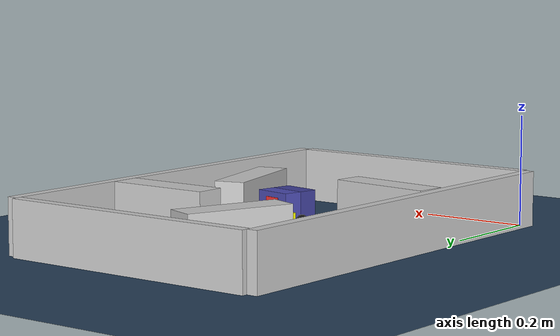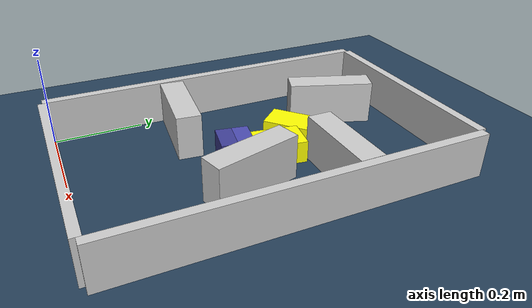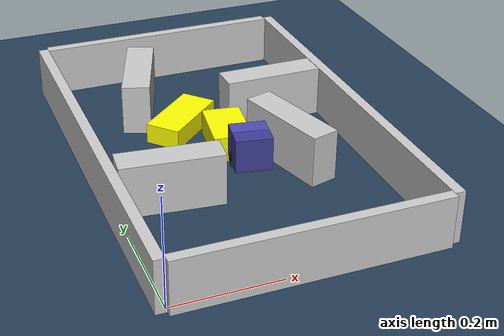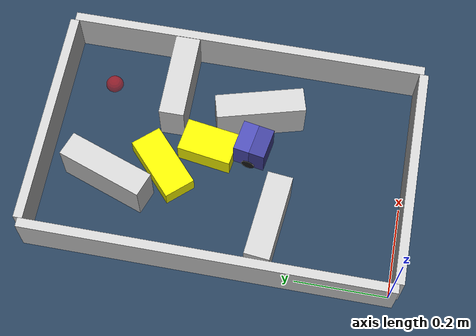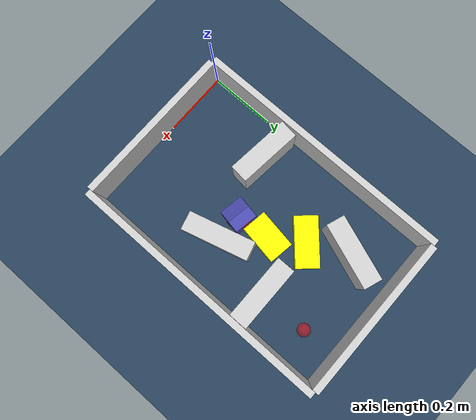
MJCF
<?xml version='1.0' encoding='utf-8'?>
<mujoco model="real_buildable">
  <compiler angle="degree" />
  <option timestep="0.002" integrator="implicitfast" iterations="100" cone="elliptic" />
  <default>
    <geom density="1" />
  </default>
  <asset>
    <texture builtin="gradient" height="3072" rgb1="0.3 0.5 0.7" rgb2="0 0 0" type="skybox" width="512" />
    <texture builtin="checker" height="300" mark="edge" markrgb="0.8 0.8 0.8" name="groundplane" rgb1="0.2 0.3 0.4" rgb2="0.1 0.2 0.3" type="2d" width="300" />
    <material name="groundplane" reflectance="0.2" texrepeat="5 5" texture="groundplane" texuniform="true" />
  </asset>
  <worldbody>
    <light dir="0 0 -1" directional="true" pos="0 0 1.5" />
    <geom name="floor" type="plane" condim="4" friction="0.5 0.005 0.001" material="groundplane" size="0 0 0.05" />
    <body name="walls">
      <geom name="wall_boundary_left" type="box" condim="4" friction="1.0 0.005 0.0001" rgba="0.8 0.8 0.8 1" pos="-0.010000 0.387500 0.050000" euler="0 0 0.000000" size="0.010000 0.397500 0.050000" />
      <geom name="wall_boundary_right" type="box" condim="4" friction="1.0 0.005 0.0001" rgba="0.8 0.8 0.8 1" pos="0.500000 0.387500 0.050000" euler="0 0 0.000000" size="0.010000 0.397500 0.050000" />
      <geom name="wall_boundary_bottom" type="box" condim="4" friction="1.0 0.005 0.0001" rgba="0.8 0.8 0.8 1" pos="0.245000 -0.010000 0.050000" euler="0 0 0.000000" size="0.245000 0.010000 0.050000" />
      <geom name="wall_boundary_top" type="box" condim="4" friction="1.0 0.005 0.0001" rgba="0.8 0.8 0.8 1" pos="0.245000 0.785000 0.050000" euler="0 0 0.000000" size="0.245000 0.010000 0.050000" />
      <geom name="wall_inner_1" type="box" condim="4" friction="1.0 0.005 0.0001" rgba="0.8 0.8 0.8 1" pos="0.100000 0.274000 0.050000" euler="0 0 174.100000" size="0.095000 0.027500 0.050000" />
      <geom name="wall_inner_2" type="box" condim="4" friction="1.0 0.005 0.0001" rgba="0.8 0.8 0.8 1" pos="0.356000 0.335000 0.050000" euler="0 0 105.500000" size="0.097500 0.027500 0.050000" />
      <geom name="wall_inner_3" type="box" condim="4" friction="1.0 0.005 0.0001" rgba="0.8 0.8 0.8 1" pos="0.392000 0.522000 0.050000" euler="0 0 0.300000" size="0.097500 0.027500 0.050000" />
      <geom name="wall_inner_4" type="box" condim="4" friction="1.0 0.005 0.0001" rgba="0.8 0.8 0.8 1" pos="0.152000 0.635000 0.050000" euler="0 0 70.300000" size="0.097500 0.027500 0.050000" />
    </body>
    <body name="car" pos="0.27540901951043173 0.33477223778013471 0.01" quat="0.76506317141138247 0 0 0.64395523427483503">
      <freejoint name="car_freejoint" />
      <inertial pos="0 0 0.0375" mass="0.35" diaginertia="0.000266 0.000266 0.000286" />
      <geom name="front_chassis_collision" type="box" pos="0.0175 0 0.0375" size="0.0175 0.035 0.0325" rgba="0.3 0.3 0.7 1" />
      <geom name="rear_chassis_collision" type="box" pos="-0.0175 0 0.0375" size="0.0175 0.035 0.0325" rgba="0.25 0.25 0.6 1" />
      <geom name="front_marker" type="box" pos="0.034 0 0.0505" size="0.002 0.015 0.01" rgba="1 0.2 0.2 1" contype="0" conaffinity="0" />
      <body name="rear_support_body" pos="-0.03 0 0.0025">
        <joint name="rear_caster_joint" type="ball" damping="0.0001" />
        <inertial pos="0 0 0" mass="0.025" diaginertia="0.000001 0.000001 0.000001" />
        <geom name="rear_support" type="sphere" pos="0 0 0" size="0.0025" friction="0 0 0" rgba="0.7 0.1 0.1 1" />
      </body>
      <body name="front_support_body" pos="0.03 0 0.0025">
        <joint name="front_caster_joint" type="ball" damping="0.0001" />
        <inertial pos="0 0 0" mass="0.025" diaginertia="0.000001 0.000001 0.000001" />
        <geom name="front_support" type="sphere" pos="0 0 0" size="0.0025" friction="0 0 0" rgba="0.1 0.7 0.1 1" />
      </body>
      <body name="left_wheel" pos="0 0.0375 0.015">
        <inertial pos="0 0 0" mass="0.05" diaginertia="0.000003 0.000006 0.000003" />
        <joint name="left_wheel_joint" type="hinge" axis="0 1 0" damping="0.01" armature="0.0001" />
        <geom name="left_wheel_collision" type="cylinder" size="0.015 0.0005" euler="90 0 0" rgba="0.1 0.1 0.1 1" />
      </body>
      <body name="right_wheel" pos="0 -0.0375 0.015">
        <inertial pos="0 0 0" mass="0.05" diaginertia="0.000003 0.000006 0.000003" />
        <joint name="right_wheel_joint" type="hinge" axis="0 1 0" damping="0.01" armature="0.0001" />
        <geom name="right_wheel_collision" type="cylinder" size="0.015 0.0005" euler="90 0 0" rgba="0.1 0.1 0.1 1" />
      </body>
    </body>
    <body name="obstacle_0_movable">
      <geom name="obstacle_0_movable" condim="4" pos="0.26727463451818428 0.43367346708722199 0.025000000000000001" friction="1 0.005 0.0001" rgba="1 1 0 1" size="0.037500 0.060000 0.025000" type="box" mass="0.1" quat="0.99716086821734928 0 0 -0.075300749637850634" />
      <joint type="free" />
    </body>
    <body name="obstacle_1_movable">
      <geom name="obstacle_1_movable" condim="4" pos="0.20499999999999996 0.52500000000000002 0.02" friction="1 0.005 0.0001" rgba="1 1 0 1" size="0.035000 0.075000 0.020000" type="box" mass="0.1" quat="0.91390005442575595 0 0 -0.40593926949803749" />
      <joint type="free" />
    </body>
    <site name="goal" type="sphere" pos="0.395000 0.680000 0.0" size="0.02" rgba="1 0 0 0.5" />
  </worldbody>
  <actuator>
    <velocity name="left_wheel_drive" joint="left_wheel_joint" ctrlrange="-25 25" kv="0.75" forcerange="-0.5 0.5" />
    <velocity name="right_wheel_drive" joint="right_wheel_joint" ctrlrange="-25 25" kv="0.75" forcerange="-0.5 0.5" />
  </actuator>
</mujoco>
